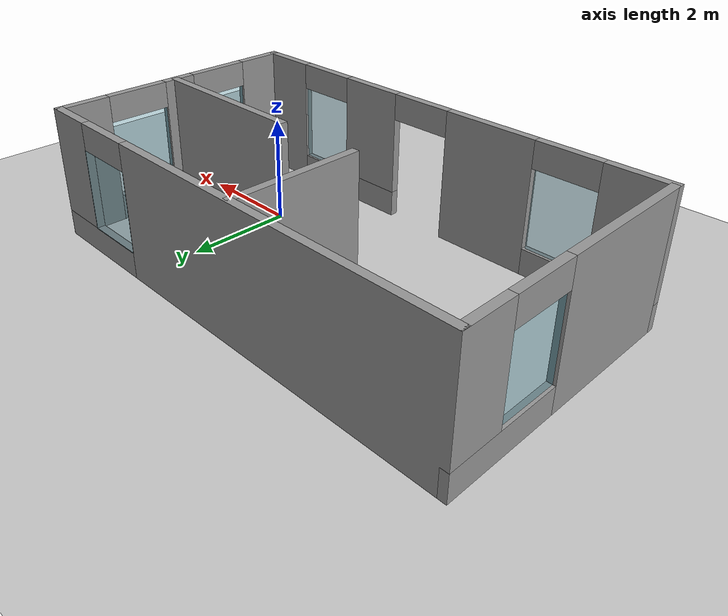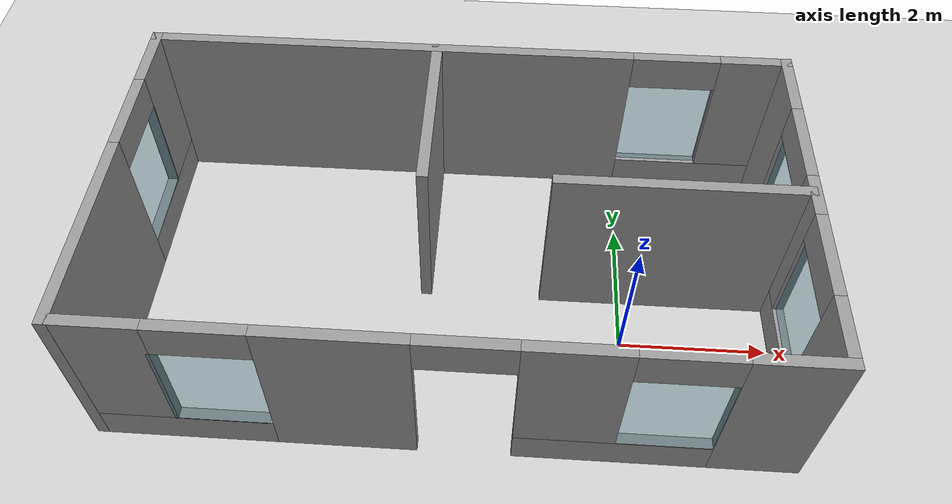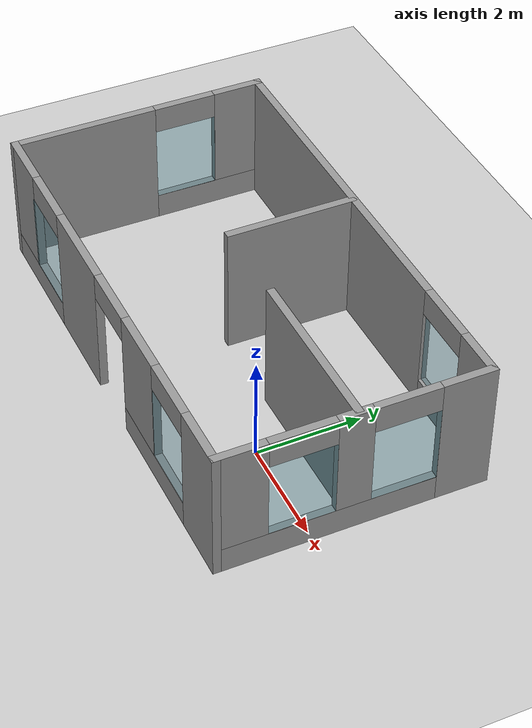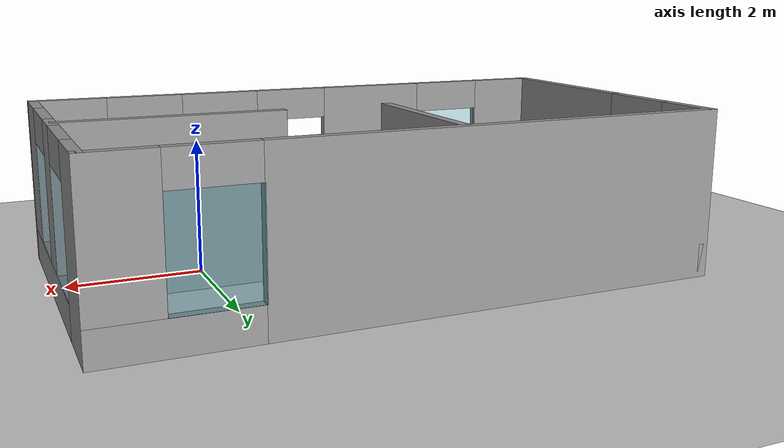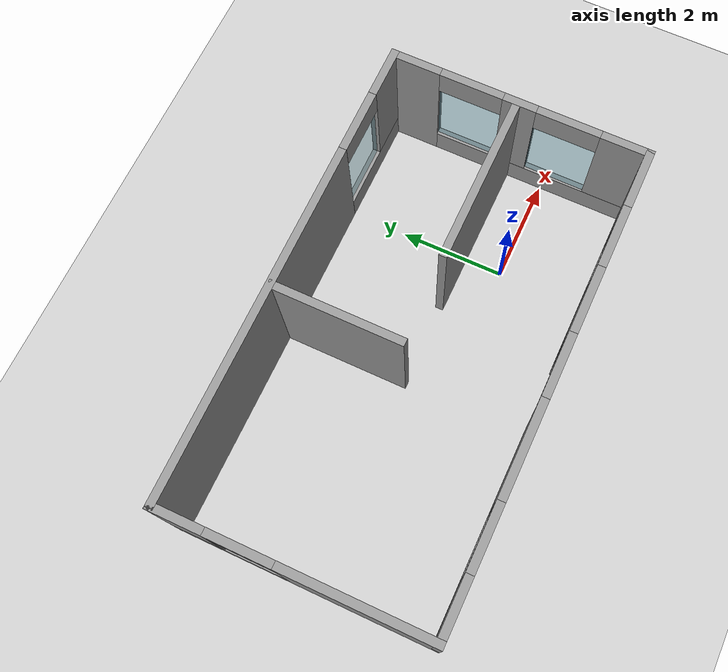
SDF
<sdf version="1.6">
 <world name="default">
  <light name="sun" type="directional">
   <pose>0 0 10 0 -0 0</pose>
   <diffuse>0.8 0.8 0.8 1</diffuse>
   <specular>0.2 0.2 0.2 1</specular>
   <attenuation>
    <range>1000</range>
    <constant>0.9</constant>
    <linear>0.01</linear>
    <quadratic>0.001</quadratic>
   </attenuation>
   <direction>-0.5 0.1 -0.9</direction>
   <spot><inner_angle>0</inner_angle><outer_angle>0</outer_angle><falloff>0</falloff></spot>
  </light>
  <model name="ground_plane">
   <static>1</static>
   <link name="link">
    <collision name="collision">
     <geometry><plane><normal>0 0 1</normal><size>100 100</size></plane></geometry>
     <surface>
      <contact><collide_bitmask>65535</collide_bitmask></contact>
      <friction><ode><mu>100</mu><mu2>50</mu2></ode></friction>
     </surface>
    </collision>
    <visual name="visual">
     <cast_shadows>0</cast_shadows>
     <geometry><plane><normal>0 0 1</normal><size>100 100</size></plane></geometry>
     <material>
      <script><uri>file://media/materials/scripts/gazebo.material</uri><name>Gazebo/Grey</name></script>
     </material>
    </visual>
   </link>
  </model>
  <gravity>0 0 -9.8</gravity>
  <magnetic_field>6e-06 2.3e-05 -4.2e-05</magnetic_field>
  <atmosphere type="adiabatic"/>
  <physics type="ode">
   <max_step_size>0.001</max_step_size>
   <real_time_factor>1</real_time_factor>
   <real_time_update_rate>1000</real_time_update_rate>
  </physics>
  <scene><ambient>0.4 0.4 0.4 1</ambient><background>0.7 0.7 0.7 1</background><shadows>1</shadows></scene>
  <spherical_coordinates>
   <surface_model>EARTH_WGS84</surface_model>
   <latitude_deg>0</latitude_deg>
   <longitude_deg>0</longitude_deg>
   <elevation>0</elevation>
   <heading_deg>0</heading_deg>
  </spherical_coordinates>
  <model name="small_apartment_windows">
   <pose>-2.31828 0.73559 0 0 -0 0</pose>
   <link name="Wall_0">
    <pose>0 2.425 0 0 -0 0</pose>
    <visual name="Wall_0_Visual_0">
     <pose>-1.08959 0 1.25 0 -0 0</pose>
     <geometry><box><size>6.82083 0.15 2.5</size></box></geometry>
     <material>
      <script><uri>file://media/materials/scripts/gazebo.material</uri><name>Gazebo/Grey</name></script>
      <ambient>1 1 1 1</ambient>
     </material>
     <meta><layer>0</layer></meta>
    </visual>
    <collision name="Wall_0_Collision_0">
     <geometry><box><size>6.82083 0.15 2.5</size></box></geometry>
     <pose>-1.08959 0 1.25 0 -0 0</pose>
    </collision>
    <visual name="Wall_0_Visual_1">
     <pose>3.41041 0 0.25 0 -0 0</pose>
     <geometry><box><size>2.17917 0.15 0.5</size></box></geometry>
     <material>
      <script><uri>file://media/materials/scripts/gazebo.material</uri><name>Gazebo/Grey</name></script>
      <ambient>1 1 1 1</ambient>
     </material>
     <meta><layer>0</layer></meta>
    </visual>
    <collision name="Wall_0_Collision_1">
     <geometry><box><size>2.17917 0.15 0.5</size></box></geometry>
     <pose>3.41041 0 0.25 0 -0 0</pose>
    </collision>
    <visual name="Wall_0_Visual_2">
     <pose>4.01041 0 1.5 0 -0 0</pose>
     <geometry><box><size>0.979174 0.15 2</size></box></geometry>
     <material>
      <script><uri>file://media/materials/scripts/gazebo.material</uri><name>Gazebo/Grey</name></script>
      <ambient>1 1 1 1</ambient>
     </material>
     <meta><layer>0</layer></meta>
    </visual>
    <collision name="Wall_0_Collision_2">
     <geometry><box><size>0.979174 0.15 2</size></box></geometry>
     <pose>4.01041 0 1.5 0 -0 0</pose>
    </collision>
    <visual name="Wall_0_Visual_3">
     <pose>2.92083 0 2.25 0 -0 0</pose>
     <geometry><box><size>1.2 0.15 0.5</size></box></geometry>
     <material>
      <script><uri>file://media/materials/scripts/gazebo.material</uri><name>Gazebo/Grey</name></script>
      <ambient>1 1 1 1</ambient>
     </material>
     <meta><layer>0</layer></meta>
    </visual>
    <collision name="Wall_0_Collision_3">
     <geometry><box><size>1.2 0.15 0.5</size></box></geometry>
     <pose>2.92083 0 2.25 0 -0 0</pose>
    </collision>
   </link>
   <link name="Wall_1">
    <pose>4.425 0 0 0 -0 -1.5708</pose>
    <visual name="Wall_1_Visual_0">
     <pose>-2.00168 0 1.25 0 -0 0</pose>
     <geometry><box><size>0.996635 0.15 2.5</size></box></geometry>
     <material>
      <script><uri>file://media/materials/scripts/gazebo.material</uri><name>Gazebo/Grey</name></script>
      <ambient>1 1 1 1</ambient>
     </material>
     <meta><layer>0</layer></meta>
    </visual>
    <collision name="Wall_1_Collision_0">
     <geometry><box><size>0.996635 0.15 2.5</size></box></geometry>
     <pose>-2.00168 0 1.25 0 -0 0</pose>
    </collision>
    <visual name="Wall_1_Visual_1">
     <pose>0.498318 0 0.25 0 -0 0</pose>
     <geometry><box><size>4.00336 0.15 0.5</size></box></geometry>
     <material>
      <script><uri>file://media/materials/scripts/gazebo.material</uri><name>Gazebo/Grey</name></script>
      <ambient>1 1 1 1</ambient>
     </material>
     <meta><layer>0</layer></meta>
    </visual>
    <collision name="Wall_1_Collision_1">
     <geometry><box><size>4.00336 0.15 0.5</size></box></geometry>
     <pose>0.498318 0 0.25 0 -0 0</pose>
    </collision>
    <visual name="Wall_1_Visual_2">
     <pose>0.014864 0 1.5 0 -0 0</pose>
     <geometry><box><size>0.636457 0.15 2</size></box></geometry>
     <material>
      <script><uri>file://media/materials/scripts/gazebo.material</uri><name>Gazebo/Grey</name></script>
      <ambient>1 1 1 1</ambient>
     </material>
     <meta><layer>0</layer></meta>
    </visual>
    <collision name="Wall_1_Collision_2">
     <geometry><box><size>0.636457 0.15 2</size></box></geometry>
     <pose>0.014864 0 1.5 0 -0 0</pose>
    </collision>
    <visual name="Wall_1_Visual_3">
     <pose>2.01655 0 1.5 0 -0 0</pose>
     <geometry><box><size>0.966908 0.15 2</size></box></geometry>
     <material>
      <script><uri>file://media/materials/scripts/gazebo.material</uri><name>Gazebo/Grey</name></script>
      <ambient>1 1 1 1</ambient>
     </material>
     <meta><layer>0</layer></meta>
    </visual>
    <collision name="Wall_1_Collision_3">
     <geometry><box><size>0.966908 0.15 2</size></box></geometry>
     <pose>2.01655 0 1.5 0 -0 0</pose>
    </collision>
    <visual name="Wall_1_Visual_4">
     <pose>-0.903365 0 2.25 0 -0 0</pose>
     <geometry><box><size>1.2 0.15 0.5</size></box></geometry>
     <material>
      <script><uri>file://media/materials/scripts/gazebo.material</uri><name>Gazebo/Grey</name></script>
      <ambient>1 1 1 1</ambient>
     </material>
     <meta><layer>0</layer></meta>
    </visual>
    <collision name="Wall_1_Collision_4">
     <geometry><box><size>1.2 0.15 0.5</size></box></geometry>
     <pose>-0.903365 0 2.25 0 -0 0</pose>
    </collision>
    <visual name="Wall_1_Visual_5">
     <pose>0.933092 0 2.25 0 -0 0</pose>
     <geometry><box><size>1.2 0.15 0.5</size></box></geometry>
     <material>
      <script><uri>file://media/materials/scripts/gazebo.material</uri><name>Gazebo/Grey</name></script>
      <ambient>1 1 1 1</ambient>
     </material>
     <meta><layer>0</layer></meta>
    </visual>
    <collision name="Wall_1_Collision_5">
     <geometry><box><size>1.2 0.15 0.5</size></box></geometry>
     <pose>0.933092 0 2.25 0 -0 0</pose>
    </collision>
   </link>
   <link name="Wall_2">
    <pose>0 -2.425 0 0 -0 3.14159</pose>
    <visual name="Wall_2_Visual_0">
     <pose>-3.91422 0 1.25 0 -0 0</pose>
     <geometry><box><size>1.17156 0.15 2.5</size></box></geometry>
     <material>
      <script><uri>file://media/materials/scripts/gazebo.material</uri><name>Gazebo/Grey</name></script>
      <ambient>1 1 1 1</ambient>
     </material>
     <meta><layer>0</layer></meta>
    </visual>
    <collision name="Wall_2_Collision_0">
     <geometry><box><size>1.17156 0.15 2.5</size></box></geometry>
     <pose>-3.91422 0 1.25 0 -0 0</pose>
    </collision>
    <visual name="Wall_2_Visual_1">
     <pose>1.23306 0 1.25 0 -0 0</pose>
     <geometry><box><size>1.7908 0.15 2.5</size></box></geometry>
     <material>
      <script><uri>file://media/materials/scripts/gazebo.material</uri><name>Gazebo/Grey</name></script>
      <ambient>1 1 1 1</ambient>
     </material>
     <meta><layer>0</layer></meta>
    </visual>
    <collision name="Wall_2_Collision_1">
     <geometry><box><size>1.7908 0.15 2.5</size></box></geometry>
     <pose>1.23306 0 1.25 0 -0 0</pose>
    </collision>
    <visual name="Wall_2_Visual_2">
     <pose>-2.09539 0 0.25 0 -0 0</pose>
     <geometry><box><size>2.4661 0.15 0.5</size></box></geometry>
     <material>
      <script><uri>file://media/materials/scripts/gazebo.material</uri><name>Gazebo/Grey</name></script>
      <ambient>1 1 1 1</ambient>
     </material>
     <meta><layer>0</layer></meta>
    </visual>
    <collision name="Wall_2_Collision_2">
     <geometry><box><size>2.4661 0.15 0.5</size></box></geometry>
     <pose>-2.09539 0 0.25 0 -0 0</pose>
    </collision>
    <visual name="Wall_2_Visual_3">
     <pose>3.31423 0 0.25 0 -0 0</pose>
     <geometry><box><size>2.37154 0.15 0.5</size></box></geometry>
     <material>
      <script><uri>file://media/materials/scripts/gazebo.material</uri><name>Gazebo/Grey</name></script>
      <ambient>1 1 1 1</ambient>
     </material>
     <meta><layer>0</layer></meta>
    </visual>
    <collision name="Wall_2_Collision_3">
     <geometry><box><size>2.37154 0.15 0.5</size></box></geometry>
     <pose>3.31423 0 0.25 0 -0 0</pose>
    </collision>
    <visual name="Wall_2_Visual_4">
     <pose>-1.49539 0 1.5 0 -0 0</pose>
     <geometry><box><size>1.2661 0.15 2</size></box></geometry>
     <material>
      <script><uri>file://media/materials/scripts/gazebo.material</uri><name>Gazebo/Grey</name></script>
      <ambient>1 1 1 1</ambient>
     </material>
     <meta><layer>0</layer></meta>
    </visual>
    <collision name="Wall_2_Collision_4">
     <geometry><box><size>1.2661 0.15 2</size></box></geometry>
     <pose>-1.49539 0 1.5 0 -0 0</pose>
    </collision>
    <visual name="Wall_2_Visual_5">
     <pose>-1.49539 0 1.5 0 -0 0</pose>
     <geometry><box><size>1.2661 0.15 2</size></box></geometry>
     <material>
      <script><uri>file://media/materials/scripts/gazebo.material</uri><name>Gazebo/Grey</name></script>
      <ambient>1 1 1 1</ambient>
     </material>
     <meta><layer>0</layer></meta>
    </visual>
    <collision name="Wall_2_Collision_5">
     <geometry><box><size>1.2661 0.15 2</size></box></geometry>
     <pose>-1.49539 0 1.5 0 -0 0</pose>
    </collision>
    <visual name="Wall_2_Visual_6">
     <pose>3.91423 0 1.5 0 -0 0</pose>
     <geometry><box><size>1.17154 0.15 2</size></box></geometry>
     <material>
      <script><uri>file://media/materials/scripts/gazebo.material</uri><name>Gazebo/Grey</name></script>
      <ambient>1 1 1 1</ambient>
     </material>
     <meta><layer>0</layer></meta>
    </visual>
    <collision name="Wall_2_Collision_6">
     <geometry><box><size>1.17154 0.15 2</size></box></geometry>
     <pose>3.91423 0 1.5 0 -0 0</pose>
    </collision>
    <visual name="Wall_2_Visual_7">
     <pose>-2.72844 0 2.25 0 -0 0</pose>
     <geometry><box><size>1.2 0.15 0.5</size></box></geometry>
     <material>
      <script><uri>file://media/materials/scripts/gazebo.material</uri><name>Gazebo/Grey</name></script>
      <ambient>1 1 1 1</ambient>
     </material>
     <meta><layer>0</layer></meta>
    </visual>
    <collision name="Wall_2_Collision_7">
     <geometry><box><size>1.2 0.15 0.5</size></box></geometry>
     <pose>-2.72844 0 2.25 0 -0 0</pose>
    </collision>
    <visual name="Wall_2_Visual_8">
     <pose>2.72846 0 2.25 0 -0 0</pose>
     <geometry><box><size>1.2 0.15 0.5</size></box></geometry>
     <material>
      <script><uri>file://media/materials/scripts/gazebo.material</uri><name>Gazebo/Grey</name></script>
      <ambient>1 1 1 1</ambient>
     </material>
     <meta><layer>0</layer></meta>
    </visual>
    <collision name="Wall_2_Collision_8">
     <geometry><box><size>1.2 0.15 0.5</size></box></geometry>
     <pose>2.72846 0 2.25 0 -0 0</pose>
    </collision>
    <visual name="Wall_2_Visual_9">
     <pose>-0.262337 0 2.25 0 -0 0</pose>
     <geometry><box><size>1.2 0.15 0.5</size></box></geometry>
     <material>
      <script><uri>file://media/materials/scripts/gazebo.material</uri><name>Gazebo/Grey</name></script>
      <ambient>1 1 1 1</ambient>
     </material>
     <meta><layer>0</layer></meta>
    </visual>
    <collision name="Wall_2_Collision_9">
     <geometry><box><size>1.2 0.15 0.5</size></box></geometry>
     <pose>-0.262337 0 2.25 0 -0 0</pose>
    </collision>
    <visual name="Wall_2_Visual_10">
     <pose>-0.262337 0 2.25 0 -0 0</pose>
     <geometry><box><size>1.2 0.15 0.5</size></box></geometry>
     <material>
      <script><uri>file://media/materials/scripts/gazebo.material</uri><name>Gazebo/Grey</name></script>
      <ambient>1 1 1 1</ambient>
     </material>
     <meta><layer>0</layer></meta>
    </visual>
    <collision name="Wall_2_Collision_10">
     <geometry><box><size>1.2 0.15 0.5</size></box></geometry>
     <pose>-0.262337 0 2.25 0 -0 0</pose>
    </collision>
   </link>
   <link name="Wall_3">
    <pose>-4.425 0 0 0 -0 1.5708</pose>
    <visual name="Wall_3_Visual_0">
     <pose>-1.09832 0 1.25 0 -0 0</pose>
     <geometry><box><size>2.80336 0.15 2.5</size></box></geometry>
     <material>
      <script><uri>file://media/materials/scripts/gazebo.material</uri><name>Gazebo/Grey</name></script>
      <ambient>1 1 1 1</ambient>
     </material>
     <meta><layer>0</layer></meta>
    </visual>
    <collision name="Wall_3_Collision_0">
     <geometry><box><size>2.80336 0.15 2.5</size></box></geometry>
     <pose>-1.09832 0 1.25 0 -0 0</pose>
    </collision>
    <visual name="Wall_3_Visual_1">
     <pose>1.40168 0 0.25 0 -0 0</pose>
     <geometry><box><size>2.19664 0.15 0.5</size></box></geometry>
     <material>
      <script><uri>file://media/materials/scripts/gazebo.material</uri><name>Gazebo/Grey</name></script>
      <ambient>1 1 1 1</ambient>
     </material>
     <meta><layer>0</layer></meta>
    </visual>
    <collision name="Wall_3_Collision_1">
     <geometry><box><size>2.19664 0.15 0.5</size></box></geometry>
     <pose>1.40168 0 0.25 0 -0 0</pose>
    </collision>
    <visual name="Wall_3_Visual_2">
     <pose>2.00168 0 1.5 0 -0 0</pose>
     <geometry><box><size>0.996635 0.15 2</size></box></geometry>
     <material>
      <script><uri>file://media/materials/scripts/gazebo.material</uri><name>Gazebo/Grey</name></script>
      <ambient>1 1 1 1</ambient>
     </material>
     <meta><layer>0</layer></meta>
    </visual>
    <collision name="Wall_3_Collision_2">
     <geometry><box><size>0.996635 0.15 2</size></box></geometry>
     <pose>2.00168 0 1.5 0 -0 0</pose>
    </collision>
    <visual name="Wall_3_Visual_3">
     <pose>0.903365 0 2.25 0 -0 0</pose>
     <geometry><box><size>1.2 0.15 0.5</size></box></geometry>
     <material>
      <script><uri>file://media/materials/scripts/gazebo.material</uri><name>Gazebo/Grey</name></script>
      <ambient>1 1 1 1</ambient>
     </material>
     <meta><layer>0</layer></meta>
    </visual>
    <collision name="Wall_3_Collision_3">
     <geometry><box><size>1.2 0.15 0.5</size></box></geometry>
     <pose>0.903365 0 2.25 0 -0 0</pose>
    </collision>
   </link>
   <link name="Wall_5">
    <collision name="Wall_5_Collision">
     <geometry><box><size>2.5 0.15 2.5</size></box></geometry>
     <pose>0 0 1.25 0 -0 0</pose>
    </collision>
    <visual name="Wall_5_Visual">
     <pose>0 0 1.25 0 -0 0</pose>
     <geometry><box><size>2.5 0.15 2.5</size></box></geometry>
     <material>
      <script><uri>file://media/materials/scripts/gazebo.material</uri><name>Gazebo/Grey</name></script>
      <ambient>1 1 1 1</ambient>
     </material>
     <meta><layer>0</layer></meta>
    </visual>
    <pose>-0.425183 1.21476 0 0 -0 -1.5708</pose>
   </link>
   <link name="Wall_8">
    <collision name="Wall_8_Collision">
     <geometry><box><size>3.25 0.15 2.5</size></box></geometry>
     <pose>0 0 1.25 0 -0 0</pose>
    </collision>
    <visual name="Wall_8_Visual">
     <pose>0 0 1.25 0 -0 0</pose>
     <geometry><box><size>3.25 0.15 2.5</size></box></geometry>
     <material>
      <script><uri>file://media/materials/scripts/gazebo.material</uri><name>Gazebo/Grey</name></script>
      <ambient>1 1 1 1</ambient>
     </material>
     <meta><layer>0</layer></meta>
    </visual>
    <pose>2.82281 0.04002 0 0 -0 0</pose>
   </link>
   <static>1</static>
  </model>
  <model name="window_for_apartment">
   <link name="link_2">
    <pose>0.037232 0.325476 0 0 -0 0</pose>
    <inertial>
     <mass>1</mass>
     <inertia><ixx>1</ixx><ixy>0</ixy><ixz>0</ixz><iyy>1</iyy><iyz>0</iyz><izz>1</izz></inertia>
    </inertial>
    <visual name="visual">
     <pose>0 0 1.25 0 -0 0</pose>
     <geometry><box><size>1.2 0.1 1.5</size></box></geometry>
     <material>
      <lighting>1</lighting>
      <ambient>0.1 0.5 0.6 1</ambient>
      <diffuse>0.1 0.5 0.6 1</diffuse>
      <specular>0.01 0.01 0.01 1</specular>
      <emissive>0 0 0 1</emissive>
      <shader type="pixel"><normal_map>__default__</normal_map></shader>
      <script><name>ModelPreview_7::link_2::visual_MATERIAL_</name><uri>__default__</uri></script>
     </material>
     <transparency>0.7</transparency>
    </visual>
    <collision name="collision">
     <pose>0 0 1.25 0 -0 0</pose>
     <geometry><box><size>1.2 0.1 1.5</size></box></geometry>
     <surface>
      <friction>
       <ode><mu>1</mu><mu2>1</mu2><fdir1>0 0 0</fdir1><slip1>0</slip1><slip2>0</slip2></ode>
       <torsional>
        <coefficient>1</coefficient>
        <patch_radius>0</patch_radius>
        <surface_radius>0</surface_radius>
        <use_patch_radius>1</use_patch_radius>
        <ode><slip>0</slip></ode>
       </torsional>
      </friction>
      <bounce><restitution_coefficient>0</restitution_coefficient><threshold>1e+06</threshold></bounce>
      <contact>
       <collide_without_contact>0</collide_without_contact>
       <collide_without_contact_bitmask>1</collide_without_contact_bitmask>
       <collide_bitmask>1</collide_bitmask>
       <ode>
        <soft_cfm>0</soft_cfm>
        <soft_erp>0.2</soft_erp>
        <kp>1e+13</kp>
        <kd>1</kd>
        <max_vel>0.01</max_vel>
        <min_depth>0</min_depth>
       </ode>
       <bullet>
        <split_impulse>1</split_impulse>
        <split_impulse_penetration_threshold>-0.01</split_impulse_penetration_threshold>
        <soft_cfm>0</soft_cfm>
        <soft_erp>0.2</soft_erp>
        <kp>1e+13</kp>
        <kd>1</kd>
       </bullet>
      </contact>
     </surface>
    </collision>
   </link>
   <static>1</static>
   <pose>0.368581 -2.0322 0 0 -0 0</pose>
  </model>
  <model name="window_for_apartment_0">
   <link name="link_2">
    <pose>0.037232 0.325476 0 0 -0 0</pose>
    <inertial>
     <mass>1</mass>
     <inertia><ixx>1</ixx><ixy>0</ixy><ixz>0</ixz><iyy>1</iyy><iyz>0</iyz><izz>1</izz></inertia>
    </inertial>
    <visual name="visual">
     <pose>0 0 1.25 0 -0 0</pose>
     <geometry><box><size>1.2 0.1 1.5</size></box></geometry>
     <material>
      <lighting>1</lighting>
      <ambient>0.1 0.5 0.6 1</ambient>
      <diffuse>0.1 0.5 0.6 1</diffuse>
      <specular>0.01 0.01 0.01 1</specular>
      <emissive>0 0 0 1</emissive>
      <shader type="pixel"><normal_map>__default__</normal_map></shader>
      <script><name>ModelPreview_7::link_2::visual_MATERIAL_</name><uri>__default__</uri></script>
     </material>
     <transparency>0.7</transparency>
    </visual>
    <collision name="collision">
     <pose>0 0 1.25 0 -0 0</pose>
     <geometry><box><size>1.2 0.1 1.5</size></box></geometry>
     <surface>
      <friction>
       <ode><mu>1</mu><mu2>1</mu2><fdir1>0 0 0</fdir1><slip1>0</slip1><slip2>0</slip2></ode>
       <torsional>
        <coefficient>1</coefficient>
        <patch_radius>0</patch_radius>
        <surface_radius>0</surface_radius>
        <use_patch_radius>1</use_patch_radius>
        <ode><slip>0</slip></ode>
       </torsional>
      </friction>
      <bounce><restitution_coefficient>0</restitution_coefficient><threshold>1e+06</threshold></bounce>
      <contact>
       <collide_without_contact>0</collide_without_contact>
       <collide_without_contact_bitmask>1</collide_without_contact_bitmask>
       <collide_bitmask>1</collide_bitmask>
       <ode>
        <soft_cfm>0</soft_cfm>
        <soft_erp>0.2</soft_erp>
        <kp>1e+13</kp>
        <kd>1</kd>
        <max_vel>0.01</max_vel>
        <min_depth>0</min_depth>
       </ode>
       <bullet>
        <split_impulse>1</split_impulse>
        <split_impulse_penetration_threshold>-0.01</split_impulse_penetration_threshold>
        <soft_cfm>0</soft_cfm>
        <soft_erp>0.2</soft_erp>
        <kp>1e+13</kp>
        <kd>1</kd>
       </bullet>
      </contact>
     </surface>
    </collision>
   </link>
   <static>1</static>
   <pose>-5.12087 -2.04515 0 0 -0 0</pose>
  </model>
  <model name="window_for_apartment_1">
   <link name="link_2">
    <pose>0.037232 0.325476 0 0 -0 0</pose>
    <inertial>
     <mass>1</mass>
     <inertia><ixx>1</ixx><ixy>0</ixy><ixz>0</ixz><iyy>1</iyy><iyz>0</iyz><izz>1</izz></inertia>
    </inertial>
    <visual name="visual">
     <pose>0 0 1.25 0 -0 0</pose>
     <geometry><box><size>1.2 0.1 1.5</size></box></geometry>
     <material>
      <lighting>1</lighting>
      <ambient>0.1 0.5 0.6 1</ambient>
      <diffuse>0.1 0.5 0.6 1</diffuse>
      <specular>0.01 0.01 0.01 1</specular>
      <emissive>0 0 0 1</emissive>
      <shader type="pixel"><normal_map>__default__</normal_map></shader>
      <script><name>ModelPreview_7::link_2::visual_MATERIAL_</name><uri>__default__</uri></script>
     </material>
     <transparency>0.7</transparency>
    </visual>
    <collision name="collision">
     <pose>0 0 1.25 0 -0 0</pose>
     <geometry><box><size>1.2 0.1 1.5</size></box></geometry>
     <surface>
      <friction>
       <ode><mu>1</mu><mu2>1</mu2><fdir1>0 0 0</fdir1><slip1>0</slip1><slip2>0</slip2></ode>
       <torsional>
        <coefficient>1</coefficient>
        <patch_radius>0</patch_radius>
        <surface_radius>0</surface_radius>
        <use_patch_radius>1</use_patch_radius>
        <ode><slip>0</slip></ode>
       </torsional>
      </friction>
      <bounce><restitution_coefficient>0</restitution_coefficient><threshold>1e+06</threshold></bounce>
      <contact>
       <collide_without_contact>0</collide_without_contact>
       <collide_without_contact_bitmask>1</collide_without_contact_bitmask>
       <collide_bitmask>1</collide_bitmask>
       <ode>
        <soft_cfm>0</soft_cfm>
        <soft_erp>0.2</soft_erp>
        <kp>1e+13</kp>
        <kd>1</kd>
        <max_vel>0.01</max_vel>
        <min_depth>0</min_depth>
       </ode>
       <bullet>
        <split_impulse>1</split_impulse>
        <split_impulse_penetration_threshold>-0.01</split_impulse_penetration_threshold>
        <soft_cfm>0</soft_cfm>
        <soft_erp>0.2</soft_erp>
        <kp>1e+13</kp>
        <kd>1</kd>
       </bullet>
      </contact>
     </surface>
    </collision>
   </link>
   <static>1</static>
   <pose>2.45182 -0.230216 0 0 -0 1.56415</pose>
  </model>
  <model name="window_for_apartment_1_clone">
   <link name="link_2">
    <pose>0.037232 0.325476 0 0 -0 0</pose>
    <inertial>
     <mass>1</mass>
     <inertia><ixx>1</ixx><ixy>0</ixy><ixz>0</ixz><iyy>1</iyy><iyz>0</iyz><izz>1</izz></inertia>
    </inertial>
    <visual name="visual">
     <pose>0 0 1.25 0 -0 0</pose>
     <geometry><box><size>1.2 0.1 1.5</size></box></geometry>
     <material>
      <lighting>1</lighting>
      <ambient>0.1 0.5 0.6 1</ambient>
      <diffuse>0.1 0.5 0.6 1</diffuse>
      <specular>0.01 0.01 0.01 1</specular>
      <emissive>0 0 0 1</emissive>
      <shader type="pixel"><normal_map>__default__</normal_map></shader>
      <script><name>ModelPreview_7::link_2::visual_MATERIAL_</name><uri>__default__</uri></script>
     </material>
     <transparency>0.7</transparency>
    </visual>
    <collision name="collision">
     <pose>0 0 1.25 0 -0 0</pose>
     <geometry><box><size>1.2 0.1 1.5</size></box></geometry>
     <surface>
      <friction>
       <ode><mu>1</mu><mu2>1</mu2><fdir1>0 0 0</fdir1><slip1>0</slip1><slip2>0</slip2></ode>
       <torsional>
        <coefficient>1</coefficient>
        <patch_radius>0</patch_radius>
        <surface_radius>0</surface_radius>
        <use_patch_radius>1</use_patch_radius>
        <ode><slip>0</slip></ode>
       </torsional>
      </friction>
      <bounce><restitution_coefficient>0</restitution_coefficient><threshold>1e+06</threshold></bounce>
      <contact>
       <collide_without_contact>0</collide_without_contact>
       <collide_without_contact_bitmask>1</collide_without_contact_bitmask>
       <collide_bitmask>1</collide_bitmask>
       <ode>
        <soft_cfm>0</soft_cfm>
        <soft_erp>0.2</soft_erp>
        <kp>1e+13</kp>
        <kd>1</kd>
        <max_vel>0.01</max_vel>
        <min_depth>0</min_depth>
       </ode>
       <bullet>
        <split_impulse>1</split_impulse>
        <split_impulse_penetration_threshold>-0.01</split_impulse_penetration_threshold>
        <soft_cfm>0</soft_cfm>
        <soft_erp>0.2</soft_erp>
        <kp>1e+13</kp>
        <kd>1</kd>
       </bullet>
      </contact>
     </surface>
    </collision>
   </link>
   <static>1</static>
   <pose>2.45918 1.59775 0 0 -0 1.56415</pose>
  </model>
  <model name="window_for_apartment_2">
   <link name="link_2">
    <pose>0.037232 0.325476 0 0 -0 0</pose>
    <inertial>
     <mass>1</mass>
     <inertia><ixx>1</ixx><ixy>0</ixy><ixz>0</ixz><iyy>1</iyy><iyz>0</iyz><izz>1</izz></inertia>
    </inertial>
    <visual name="visual">
     <pose>0 0 1.25 0 -0 0</pose>
     <geometry><box><size>1.2 0.1 1.5</size></box></geometry>
     <material>
      <lighting>1</lighting>
      <ambient>0.1 0.5 0.6 1</ambient>
      <diffuse>0.1 0.5 0.6 1</diffuse>
      <specular>0.01 0.01 0.01 1</specular>
      <emissive>0 0 0 1</emissive>
      <shader type="pixel"><normal_map>__default__</normal_map></shader>
      <script><name>ModelPreview_7::link_2::visual_MATERIAL_</name><uri>__default__</uri></script>
     </material>
     <transparency>0.7</transparency>
    </visual>
    <collision name="collision">
     <pose>0 0 1.25 0 -0 0</pose>
     <geometry><box><size>1.2 0.1 1.5</size></box></geometry>
     <surface>
      <friction>
       <ode><mu>1</mu><mu2>1</mu2><fdir1>0 0 0</fdir1><slip1>0</slip1><slip2>0</slip2></ode>
       <torsional>
        <coefficient>1</coefficient>
        <patch_radius>0</patch_radius>
        <surface_radius>0</surface_radius>
        <use_patch_radius>1</use_patch_radius>
        <ode><slip>0</slip></ode>
       </torsional>
      </friction>
      <bounce><restitution_coefficient>0</restitution_coefficient><threshold>1e+06</threshold></bounce>
      <contact>
       <collide_without_contact>0</collide_without_contact>
       <collide_without_contact_bitmask>1</collide_without_contact_bitmask>
       <collide_bitmask>1</collide_bitmask>
       <ode>
        <soft_cfm>0</soft_cfm>
        <soft_erp>0.2</soft_erp>
        <kp>1e+13</kp>
        <kd>1</kd>
        <max_vel>0.01</max_vel>
        <min_depth>0</min_depth>
       </ode>
       <bullet>
        <split_impulse>1</split_impulse>
        <split_impulse_penetration_threshold>-0.01</split_impulse_penetration_threshold>
        <soft_cfm>0</soft_cfm>
        <soft_erp>0.2</soft_erp>
        <kp>1e+13</kp>
        <kd>1</kd>
       </bullet>
      </contact>
     </surface>
    </collision>
   </link>
   <static>1</static>
   <pose>0.556779 2.86936 0 0 -0 0</pose>
  </model>
  <model name="window_for_apartment_1_clone_clone">
   <link name="link_2">
    <pose>0.037232 0.325476 0 0 -0 0</pose>
    <inertial>
     <mass>1</mass>
     <inertia><ixx>1</ixx><ixy>0</ixy><ixz>0</ixz><iyy>1</iyy><iyz>0</iyz><izz>1</izz></inertia>
    </inertial>
    <visual name="visual">
     <pose>0 0 1.25 0 -0 0</pose>
     <geometry><box><size>1.2 0.1 1.5</size></box></geometry>
     <material>
      <lighting>1</lighting>
      <ambient>0.1 0.5 0.6 1</ambient>
      <diffuse>0.1 0.5 0.6 1</diffuse>
      <specular>0.01 0.01 0.01 1</specular>
      <emissive>0 0 0 1</emissive>
      <shader type="pixel"><normal_map>__default__</normal_map></shader>
      <script><name>ModelPreview_7::link_2::visual_MATERIAL_</name><uri>__default__</uri></script>
     </material>
     <transparency>0.7</transparency>
    </visual>
    <collision name="collision">
     <pose>0 0 1.25 0 -0 0</pose>
     <geometry><box><size>1.2 0.1 1.5</size></box></geometry>
     <surface>
      <friction>
       <ode><mu>1</mu><mu2>1</mu2><fdir1>0 0 0</fdir1><slip1>0</slip1><slip2>0</slip2></ode>
       <torsional>
        <coefficient>1</coefficient>
        <patch_radius>0</patch_radius>
        <surface_radius>0</surface_radius>
        <use_patch_radius>1</use_patch_radius>
        <ode><slip>0</slip></ode>
       </torsional>
      </friction>
      <bounce><restitution_coefficient>0</restitution_coefficient><threshold>1e+06</threshold></bounce>
      <contact>
       <collide_without_contact>0</collide_without_contact>
       <collide_without_contact_bitmask>1</collide_without_contact_bitmask>
       <collide_bitmask>1</collide_bitmask>
       <ode>
        <soft_cfm>0</soft_cfm>
        <soft_erp>0.2</soft_erp>
        <kp>1e+13</kp>
        <kd>1</kd>
        <max_vel>0.01</max_vel>
        <min_depth>0</min_depth>
       </ode>
       <bullet>
        <split_impulse>1</split_impulse>
        <split_impulse_penetration_threshold>-0.01</split_impulse_penetration_threshold>
        <soft_cfm>0</soft_cfm>
        <soft_erp>0.2</soft_erp>
        <kp>1e+13</kp>
        <kd>1</kd>
       </bullet>
      </contact>
     </surface>
    </collision>
   </link>
   <static>1</static>
   <pose>-6.38938 1.59907 0 0 -0 1.56415</pose>
  </model>
 </world>
</sdf>
